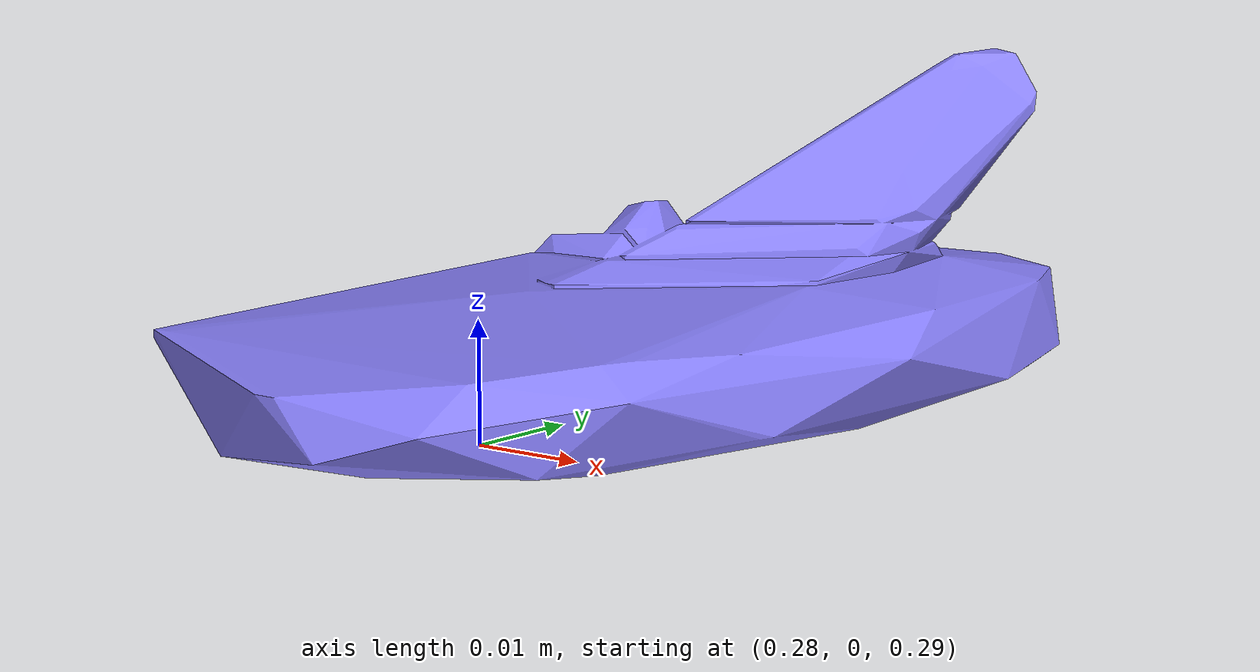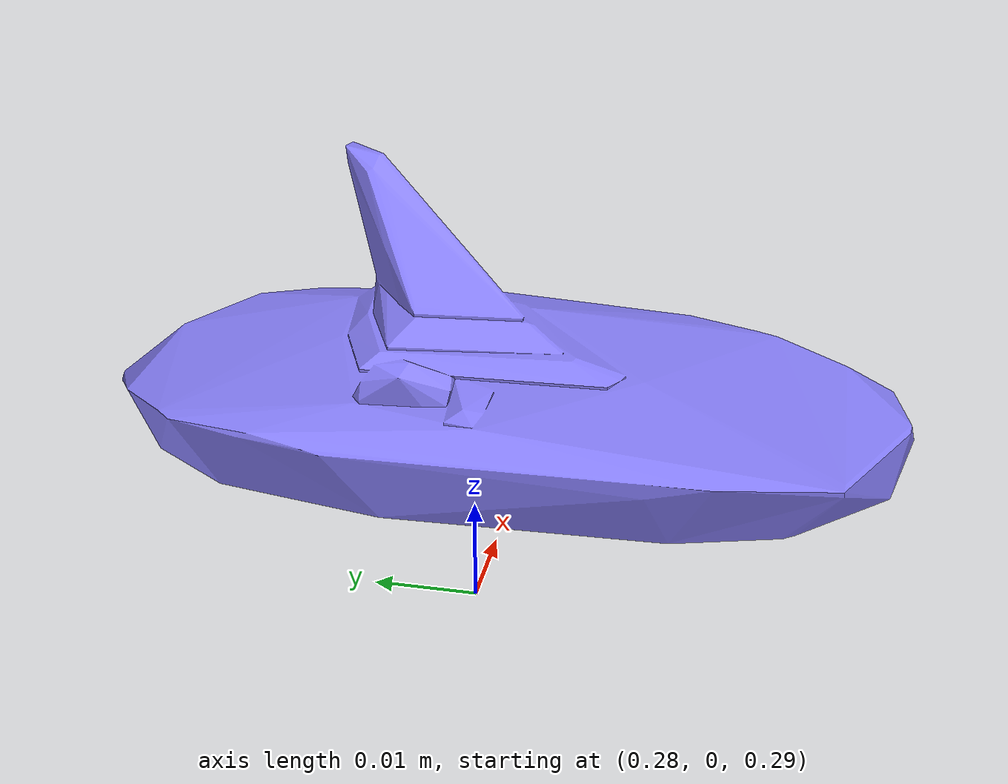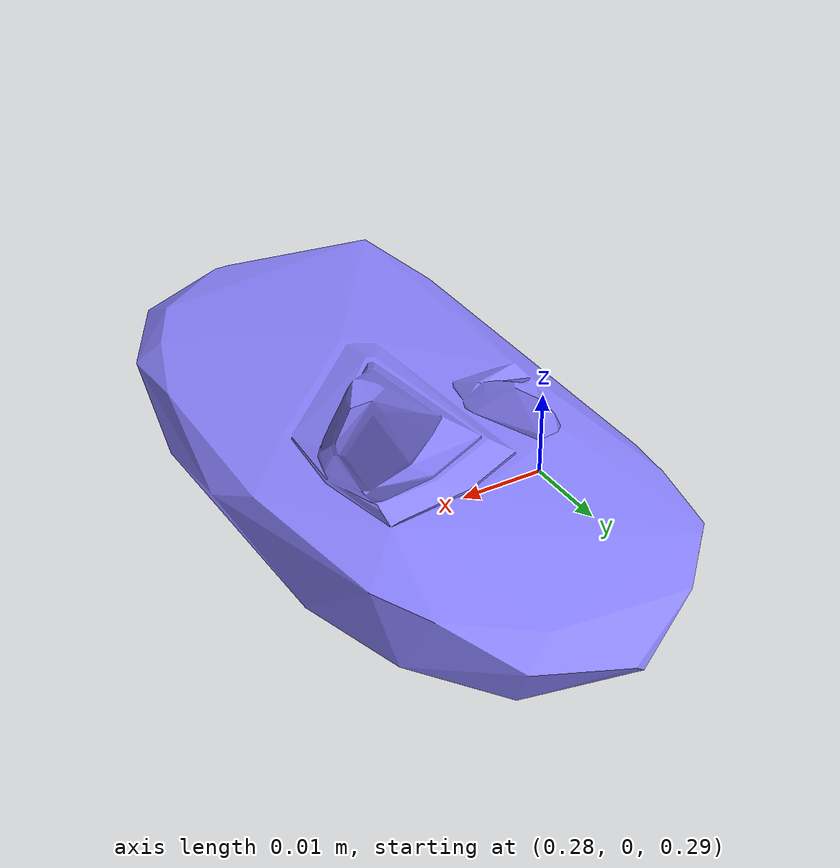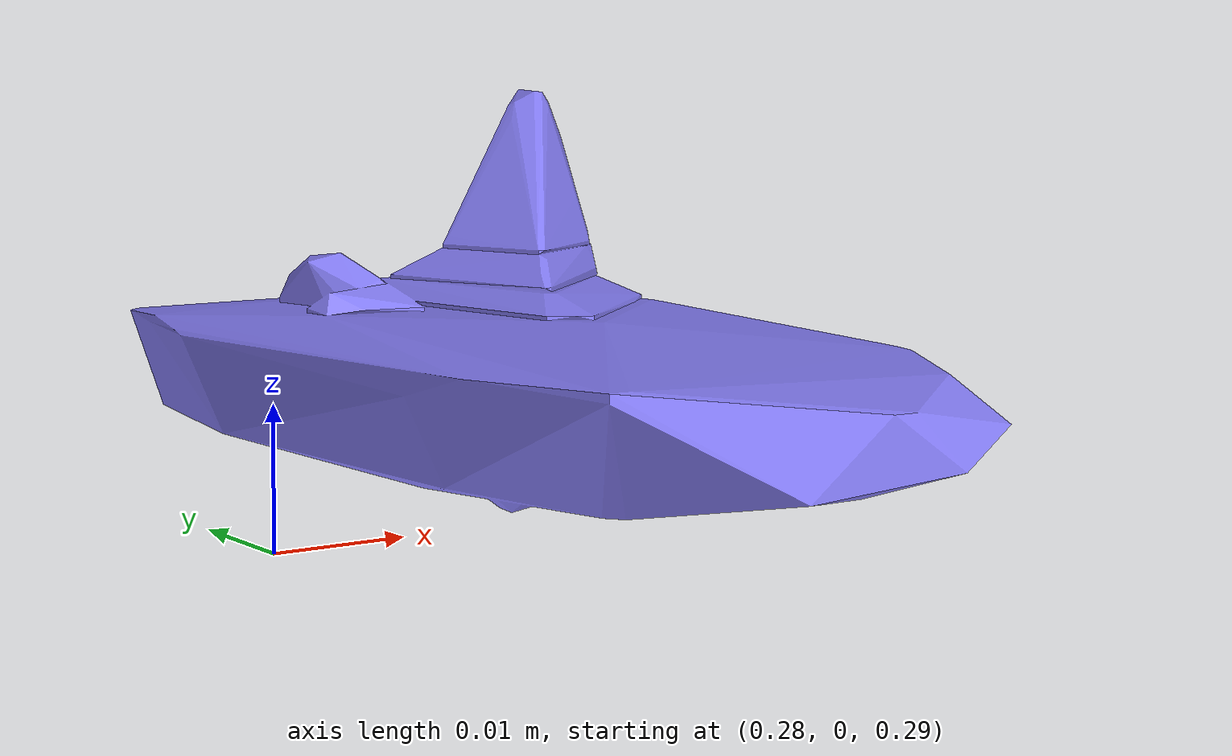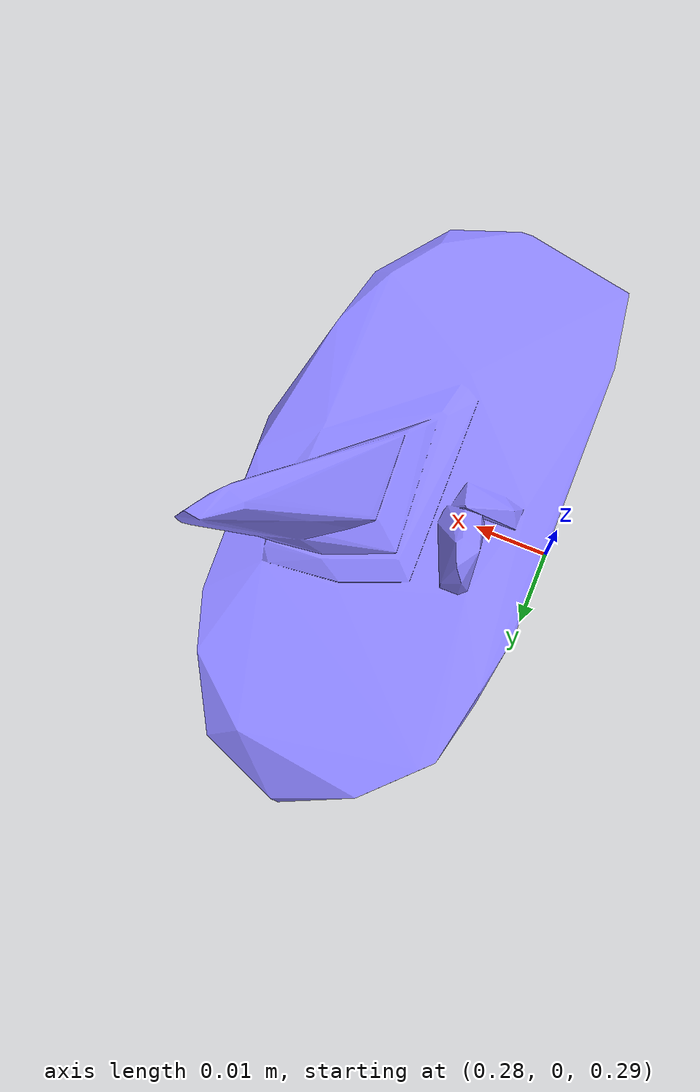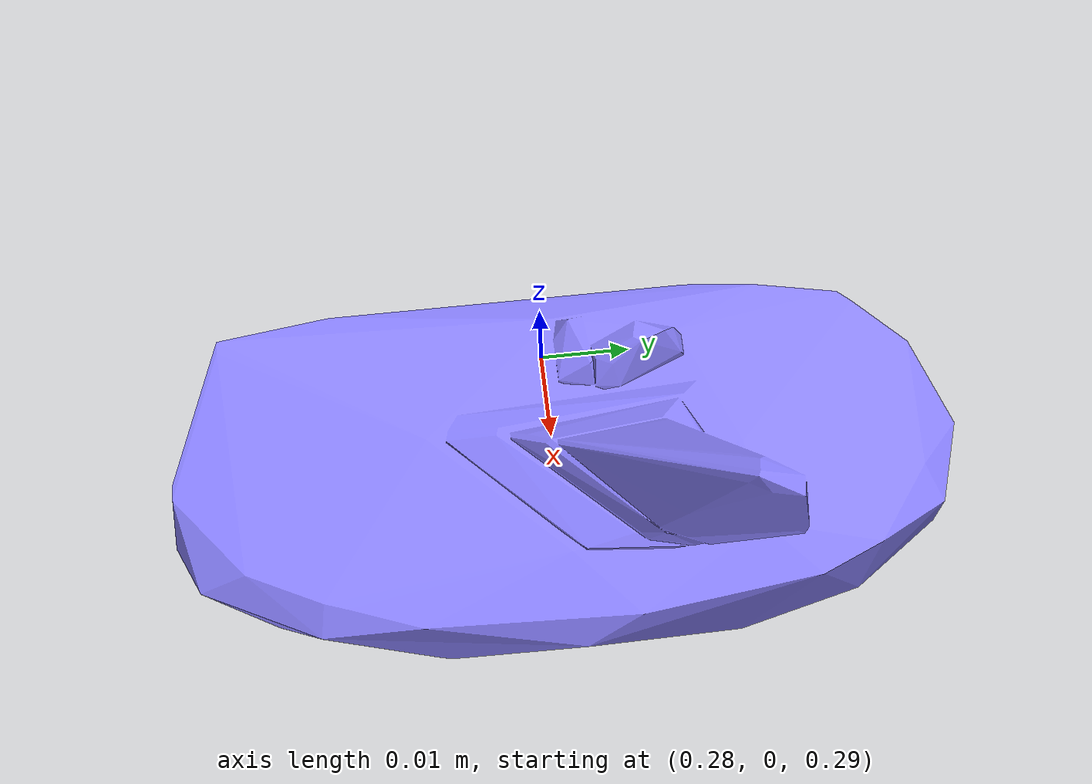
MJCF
<mujoco model="blob000">
    <asset>
        <mesh name="000_coll" file="000_coll.stl" scale="0.0076 0.0076 0.0076" />
    </asset>
    <worldbody>
        <body name="blob000" pos="0.3 0.0 0.3" quat="0.0 1.0 0.0 0.0">
            <geom type="mesh" rgba="0.54 0.51 1 1" mesh="000_coll" mass="0.45" />
        </body>
    </worldbody>
</mujoco>
